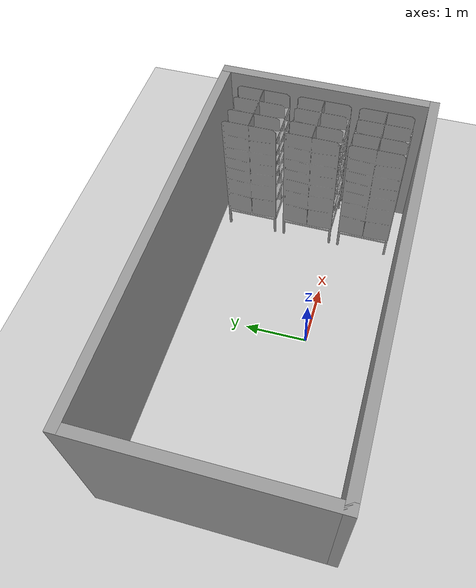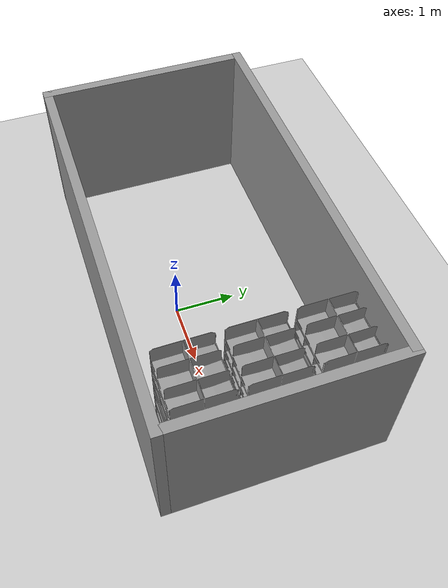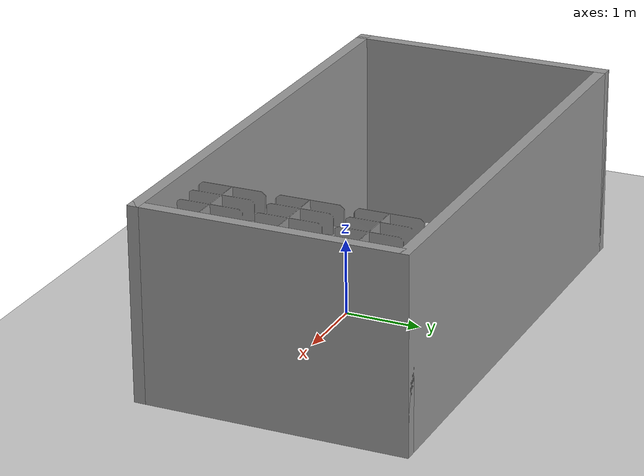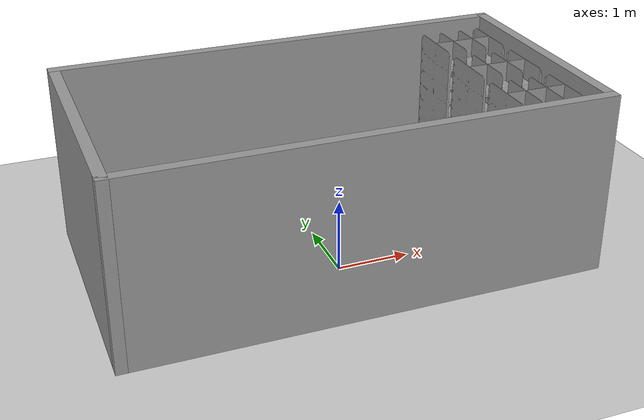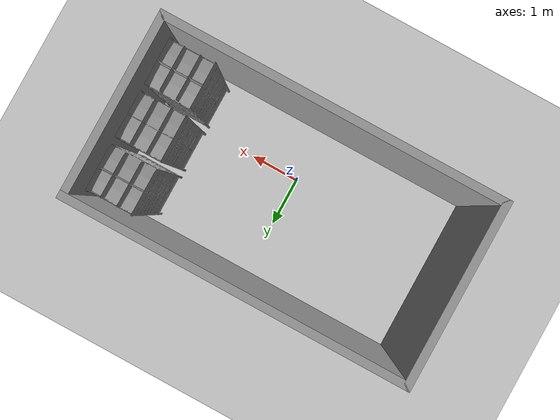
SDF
<sdf version="1.7">
 <world name="default">
  <light name="sun" type="directional">
   <pose>0 0 10 0 -0 0</pose>
   <diffuse>0.8 0.8 0.8 1</diffuse>
   <specular>0.2 0.2 0.2 1</specular>
   <attenuation>
    <range>1000</range>
    <constant>0.9</constant>
    <linear>0.01</linear>
    <quadratic>0.001</quadratic>
   </attenuation>
   <direction>-0.5 0.1 -0.9</direction>
   <spot><inner_angle>0</inner_angle><outer_angle>0</outer_angle><falloff>0</falloff></spot>
  </light>
  <model name="ground_plane">
   <static>1</static>
   <link name="link">
    <collision name="collision">
     <geometry><plane><normal>0 0 1</normal><size>100 100</size></plane></geometry>
     <surface>
      <contact><collide_bitmask>65535</collide_bitmask></contact>
      <friction><ode><mu>100</mu><mu2>50</mu2></ode></friction>
     </surface>
    </collision>
    <visual name="visual">
     <cast_shadows>0</cast_shadows>
     <geometry><plane><normal>0 0 1</normal><size>100 100</size></plane></geometry>
     <material>
      <script><uri>file://media/materials/scripts/gazebo.material</uri><name>Gazebo/Grey</name></script>
     </material>
    </visual>
   </link>
  </model>
  <gravity>0 0 -9.8</gravity>
  <magnetic_field>6e-06 2.3e-05 -4.2e-05</magnetic_field>
  <atmosphere type="adiabatic"/>
  <physics type="ode">
   <max_step_size>0.001</max_step_size>
   <real_time_factor>1</real_time_factor>
   <real_time_update_rate>1000</real_time_update_rate>
  </physics>
  <scene><ambient>0.4 0.4 0.4 1</ambient><background>0.7 0.7 0.7 1</background><shadows>1</shadows></scene>
  <spherical_coordinates>
   <surface_model>EARTH_WGS84</surface_model>
   <latitude_deg>0</latitude_deg>
   <longitude_deg>0</longitude_deg>
   <elevation>0</elevation>
   <heading_deg>0</heading_deg>
  </spherical_coordinates>
  <model name="warehouse_compact">
   <pose>0 0.5 0 0 -0 0</pose>
   <link name="Wall_0">
    <collision name="Wall_0_Collision">
     <geometry><box><size>3.5 0.15 2.5</size></box></geometry>
     <pose>0 0 1.25 0 -0 0</pose>
    </collision>
    <visual name="Wall_0_Visual">
     <pose>0 0 1.25 0 -0 0</pose>
     <geometry><box><size>3.5 0.15 2.5</size></box></geometry>
     <material>
      <script><uri>file://media/materials/scripts/gazebo.material</uri><name>Gazebo/Grey</name></script>
      <ambient>1 1 1 1</ambient>
     </material>
     <meta><layer>0</layer></meta>
    </visual>
    <pose>-3.175 0 0 0 -0 1.5708</pose>
   </link>
   <link name="Wall_1">
    <collision name="Wall_1_Collision">
     <geometry><box><size>6.5 0.15 2.5</size></box></geometry>
     <pose>0 0 1.25 0 -0 0</pose>
    </collision>
    <visual name="Wall_1_Visual">
     <pose>0 0 1.25 0 -0 0</pose>
     <geometry><box><size>6.5 0.15 2.5</size></box></geometry>
     <material>
      <script><uri>file://media/materials/scripts/gazebo.material</uri><name>Gazebo/Grey</name></script>
      <ambient>1 1 1 1</ambient>
     </material>
     <meta><layer>0</layer></meta>
    </visual>
    <pose>-0 1.675 0 0 -0 0</pose>
   </link>
   <link name="Wall_2">
    <collision name="Wall_2_Collision">
     <geometry><box><size>3.5 0.15 2.5</size></box></geometry>
     <pose>0 0 1.25 0 -0 0</pose>
    </collision>
    <visual name="Wall_2_Visual">
     <pose>0 0 1.25 0 -0 0</pose>
     <geometry><box><size>3.5 0.15 2.5</size></box></geometry>
     <material>
      <script><uri>file://media/materials/scripts/gazebo.material</uri><name>Gazebo/Grey</name></script>
      <ambient>1 1 1 1</ambient>
     </material>
     <meta><layer>0</layer></meta>
    </visual>
    <pose>3.175 0 0 0 -0 -1.5708</pose>
   </link>
   <link name="Wall_3">
    <collision name="Wall_3_Collision">
     <geometry><box><size>6.5 0.15 2.5</size></box></geometry>
     <pose>0 0 1.25 0 -0 0</pose>
    </collision>
    <visual name="Wall_3_Visual">
     <pose>0 0 1.25 0 -0 0</pose>
     <geometry><box><size>6.5 0.15 2.5</size></box></geometry>
     <material>
      <script><uri>file://media/materials/scripts/gazebo.material</uri><name>Gazebo/Grey</name></script>
      <ambient>1 1 1 1</ambient>
     </material>
     <meta><layer>0</layer></meta>
    </visual>
    <pose>-0 -1.675 0 0 -0 3.14159</pose>
   </link>
   <static>1</static>
  </model>
  <model name="Amazon Pod">
   <link name="pod_link">
    <inertial>
     <pose>0 0 1.2045 0 -0 0</pose>
     <mass>76.26</mass>
     <inertia>
      <ixx>47</ixx>
      <ixy>-0.003456</ixy>
      <ixz>0.001474</ixz>
      <izz>13.075</izz>
      <iyz>-0.014439</iyz>
      <iyy>47</iyy>
     </inertia>
    </inertial>
    <visual name="pod_visual">
     <pose>0 0 0 1.5707 -0 0</pose>
     <material>
      <script><uri>file://media/materials/scripts/gazebo.material</uri><name>Gazebo/Grey</name></script>
     </material>
     <geometry><mesh><uri>model://kiva_pod/meshes/pod_lowres.stl</uri></mesh></geometry>
    </visual>
    <collision name="pod_collision">
     <pose>0 0 0 1.5707 -0 0</pose>
     <geometry><mesh><uri>model://kiva_pod/meshes/pod_lowres.stl</uri></mesh></geometry>
     <surface>
      <friction><ode><mu>0.8</mu><mu2>0.8</mu2><fdir1>0 0 0</fdir1><slip1>1</slip1><slip2>1</slip2></ode></friction>
     </surface>
    </collision>
   </link>
   <pose>2.5 1.50001 3e-06 8.9e-05 1.4e-05 0.000113</pose>
  </model>
  <model name="Amazon Pod_0">
   <link name="pod_link">
    <inertial>
     <pose>0 0 1.2045 0 -0 0</pose>
     <mass>76.26</mass>
     <inertia>
      <ixx>47</ixx>
      <ixy>-0.003456</ixy>
      <ixz>0.001474</ixz>
      <izz>13.075</izz>
      <iyz>-0.014439</iyz>
      <iyy>47</iyy>
     </inertia>
    </inertial>
    <visual name="pod_visual">
     <pose>0 0 0 1.5707 -0 0</pose>
     <material>
      <script><uri>file://media/materials/scripts/gazebo.material</uri><name>Gazebo/Grey</name></script>
     </material>
     <geometry><mesh><uri>model://kiva_pod/meshes/pod_lowres.stl</uri></mesh></geometry>
    </visual>
    <collision name="pod_collision">
     <pose>0 0 0 1.5707 -0 0</pose>
     <geometry><mesh><uri>model://kiva_pod/meshes/pod_lowres.stl</uri></mesh></geometry>
     <surface>
      <friction><ode><mu>0.8</mu><mu2>0.8</mu2><fdir1>0 0 0</fdir1><slip1>1</slip1><slip2>1</slip2></ode></friction>
     </surface>
    </collision>
   </link>
   <pose>2.50001 0.500011 0 9.2e-05 -5e-06 0.000126</pose>
  </model>
  <model name="Amazon Pod_1">
   <link name="pod_link">
    <inertial>
     <pose>0 0 1.2045 0 -0 0</pose>
     <mass>76.26</mass>
     <inertia>
      <ixx>47</ixx>
      <ixy>-0.003456</ixy>
      <ixz>0.001474</ixz>
      <izz>13.075</izz>
      <iyz>-0.014439</iyz>
      <iyy>47</iyy>
     </inertia>
    </inertial>
    <visual name="pod_visual">
     <pose>0 0 0 1.5707 -0 0</pose>
     <material>
      <script><uri>file://media/materials/scripts/gazebo.material</uri><name>Gazebo/Grey</name></script>
     </material>
     <geometry><mesh><uri>model://kiva_pod/meshes/pod_lowres.stl</uri></mesh></geometry>
    </visual>
    <collision name="pod_collision">
     <pose>0 0 0 1.5707 -0 0</pose>
     <geometry><mesh><uri>model://kiva_pod/meshes/pod_lowres.stl</uri></mesh></geometry>
     <surface>
      <friction><ode><mu>0.8</mu><mu2>0.8</mu2><fdir1>0 0 0</fdir1><slip1>1</slip1><slip2>1</slip2></ode></friction>
     </surface>
    </collision>
   </link>
   <pose>2.5 -0.500012 -2e-06 9.2e-05 1e-06 0.000107</pose>
  </model>
 </world>
</sdf>
